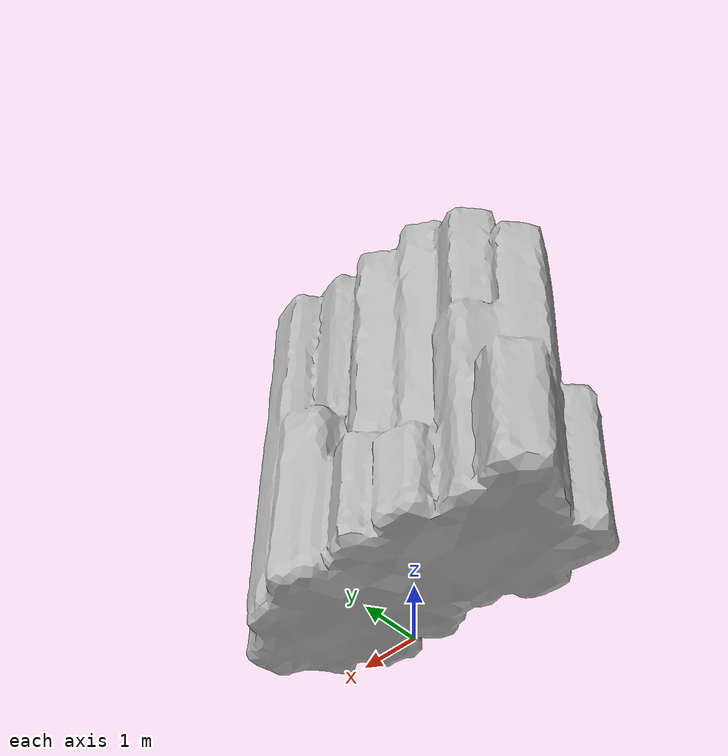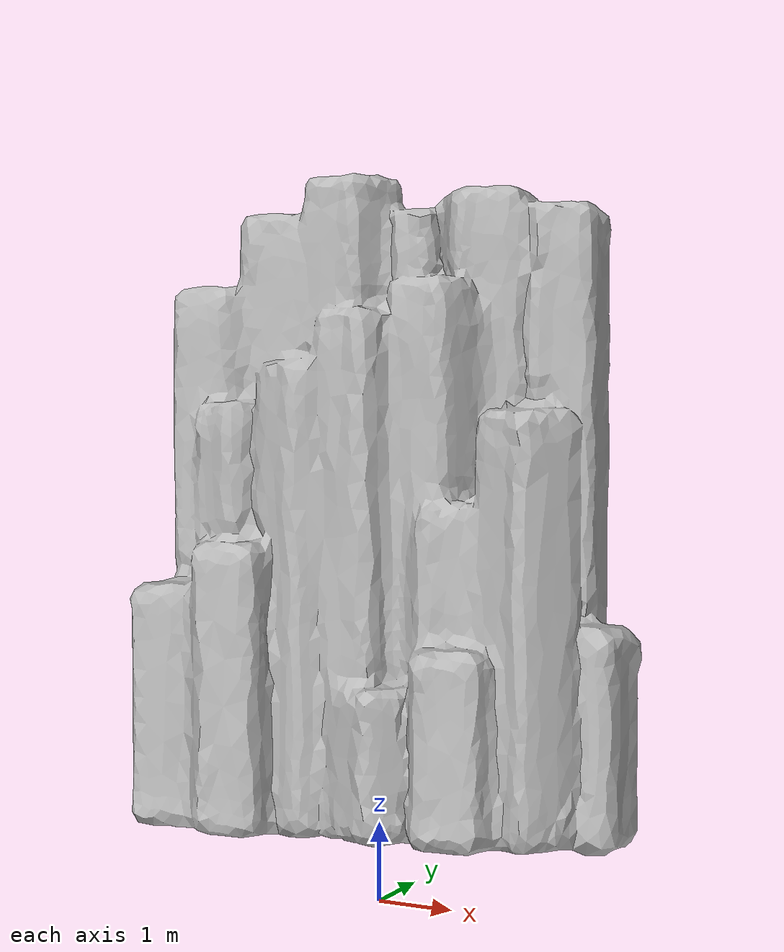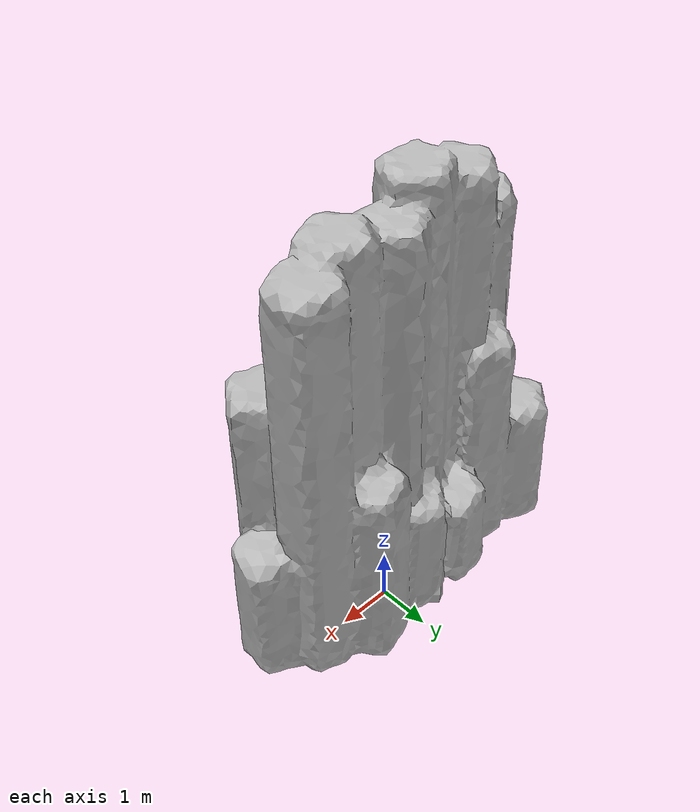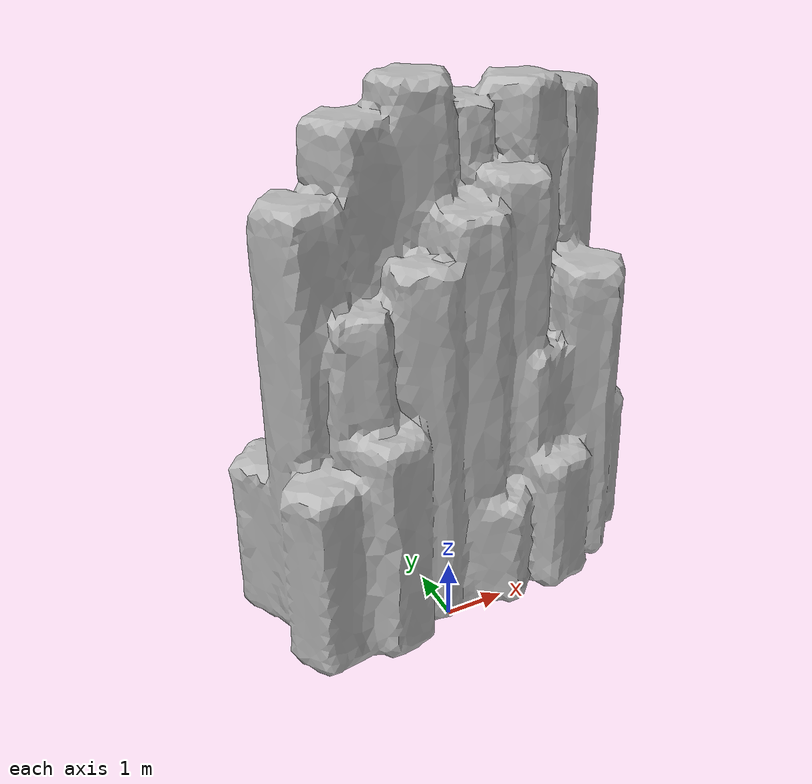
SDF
<?xml version='1.0' ?>
<sdf version="1.6">
    <model name="Cave Crystal">
        <static>false</static>
        <link name="link">
            <collision name="collision">
                <pose>0 0 5 0 0 0</pose>
                <geometry>
                    <mesh>
                        <uri>meshes/CaveCrystal.dae</uri>
                        <scale>0.1 0.1 0.1</scale> <!-- Add scale here -->
                    </mesh>
                </geometry>
            </collision>
            <visual name="visual">
                <pose>0 0 5 0 0 0</pose>
                <geometry>
                    <mesh>
                        <uri>meshes/CaveCrystal.dae</uri>
                        <scale>0.1 0.1 0.1</scale> <!-- Add scale here -->
                    </mesh>
                </geometry>
            </visual>
        </link>
    </model>
</sdf>
